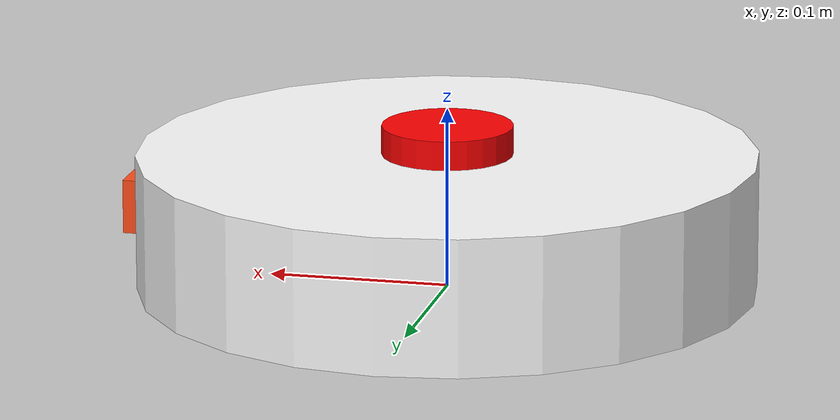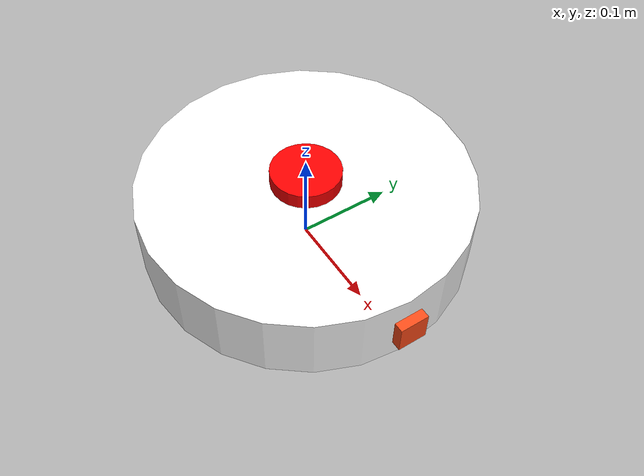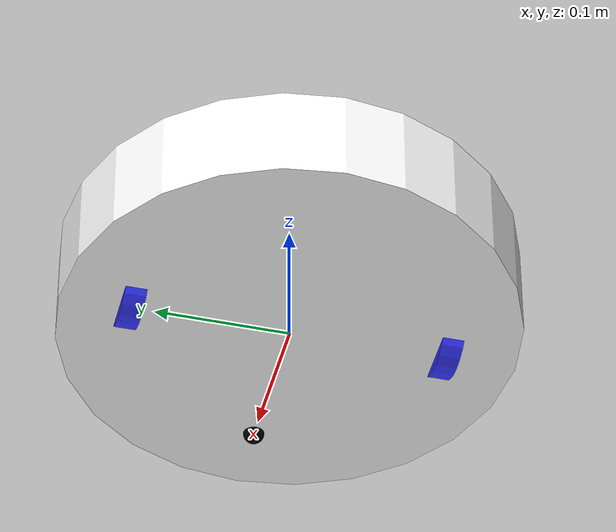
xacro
<?xml version="1.0"?>
<robot xmlns:xacro="http://www.ros.org/wiki/xacro" name="roomba">

    <xacro:arg name="use_ros2_control" default="true" />
    <xacro:arg name="sim_mode" default="false" />

    <xacro:include filename="robot_core.xacro" />

    <xacro:if value="$(arg use_ros2_control)">
        <xacro:include filename="ros2_control.xacro" />
    </xacro:if>

    <xacro:unless value="$(arg use_ros2_control)">
        <xacro:include filename="gazebo_control.xacro" />
    </xacro:unless>

    <xacro:include filename="lidar.xacro" />
    <!-- Esse aqui é o arquivo para a câmera -->
    <xacro:include filename="camera.xacro" />
</robot>

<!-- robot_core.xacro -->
<robot xmlns:xacro="http://www.ros.org/wiki/xacro">

  <xacro:include filename="inertial_macros.xacro" />
  <xacro:include filename="materials_macros.xacro" />

  <!-- BASE LINK-->
  <link name="base_link"></link>

  <!-- BASE FOOTPRINT LINK-->
  <joint name="base_footprint_joint" type="fixed">
    <parent link="base_link" />
    <child link="base_footprint" />
    <origin xyz="0.0 0.0 0.0" rpy="0.0 0.0 0.0" />
  </joint>

  <link name="base_footprint" />

  <!-- CHASSI LINK-->
  <joint name="chassis_joint" type="fixed">
    <parent link="base_link" />
    <child link="chassis" />
    <origin xyz="-0.17 0.0 0.0" />
  </joint>

  <link name="chassis">
    <visual>
      <origin xyz="0.17 0.0 0.0375" />
      <geometry>
        <cylinder radius="0.17" length="0.075" />
      </geometry>
      <xacro:material_white />
    </visual>

    <collision>
      <origin xyz="0.17 0.0 0.0375" />
      <geometry>
        <cylinder radius="0.17" length="0.075" />
      </geometry>
    </collision>

    <xacro:inertial_cylinder mass="0.7" radius="0.17" length="0.075">
      <origin xyz="0.17 0.0 0.0375" rpy="0.0 0.0 0.0" />
    </xacro:inertial_cylinder>
  </link>

  <xacro:gazebo_material_white reference="chassis" />

  <!-- LEFT WHEEL LINK-->
  <joint name="left_wheel_joint" type="continuous">
    <parent link="base_link" />
    <child link="left_wheel" />
    <origin xyz="0.0 0.1175 0.028" rpy="-${pi/2} 0.0 0.0" />
    <axis xyz="0.0 0.0 1" />
  </joint>

  <link name="left_wheel">
    <visual>
      <geometry>
        <cylinder radius="0.036" length="0.016" />
      </geometry>
      <xacro:material_blue />
    </visual>

    <collision>
      <geometry>
        <sphere radius="0.036" />
      </geometry>
    </collision>

    <xacro:inertial_cylinder mass="0.6" radius="0.036" length="0.016">
      <origin xyz="0.0 0.0 0.0" rpy="0.0 0.0 0.0" />
    </xacro:inertial_cylinder>
  </link>

  <xacro:gazebo_material_blue reference="left_wheel" />

  <!--RIGHT
  WHEEL LINK -->
  <joint name="right_wheel_joint" type="continuous">
    <parent link="base_link" />
    <child link="right_wheel" />
    <origin xyz="0.0 -0.1175 0.028" rpy="${pi/2} 0.0 0.0" />
    <axis xyz="0.0 0.0 -1" />
  </joint>

  <link name="right_wheel">
    <visual>
      <geometry>
        <cylinder radius="0.036" length="0.016" />
      </geometry>
      <xacro:material_blue />

    </visual>
    <collision>
      <geometry>
        <sphere radius="0.036" />
      </geometry>
    </collision>

    <xacro:inertial_cylinder mass="0.6" radius="0.036" length="0.016">
      <origin xyz="0.0 0.0 0.0" rpy="0.0 0.0 0.0" />
    </xacro:inertial_cylinder>
  </link>

  <xacro:gazebo_material_blue reference="right_wheel" />

  <!-- CASTER WHEEL LINK-->
  <joint name="caster_wheel_link" type="fixed">
    <parent link="chassis" />
    <child link="caster_wheel" />
    <origin xyz="0.284 0.0 0.0" />
  </joint>

  <link name="caster_wheel">
    <visual>
      <geometry>
        <sphere radius="0.008" />
      </geometry>
      <xacro:material_black />
    </visual>

    <collision>
      <geometry>
        <sphere radius="0.008" />
      </geometry>
    </collision>

    <xacro:inertial_sphere mass="1.6" radius="0.008">
      <origin xyz="0.0 0.0 0.0" rpy="0.0 0.0 0.0" />
    </xacro:inertial_sphere>
  </link>

  <xacro:gazebo_material_black reference="caster_wheel" />

  <gazebo reference="caster_wheel">
    <mu1 value="0.001" />
    <mu2 value="0.001" />
  </gazebo>

</robot>

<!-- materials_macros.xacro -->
<robot xmlns:xacro="http://www.ros.org/wiki/xacro">
  <xacro:macro name="material_white">
    <material name="white">
      <color rgba="1 1 1 1" />
    </material>
  </xacro:macro>

  <xacro:macro name="material_orange">
    <material name="orange">
      <color rgba="1 0.3 0.1 1" />
    </material>
  </xacro:macro>

  <xacro:macro name="material_blue">
    <material name="blue">
      <color rgba="0.2 0.2 1 1" />
    </material>
  </xacro:macro>

  <xacro:macro name="material_black">
    <material name="black">
      <color rgba="0 0 0 1" />
    </material>
  </xacro:macro>

  <xacro:macro name="material_red">
    <material name="red">
      <color rgba="1 0 0 1" />
    </material>
  </xacro:macro>

  <xacro:macro name="gazebo_material_white" params="reference">
    <gazebo reference="${reference}">
      <material>Gazebo/White</material>
    </gazebo>
  </xacro:macro>

  <xacro:macro name="gazebo_material_blue" params="reference">
    <gazebo reference="${reference}">
      <material>Gazebo/Blue</material>
    </gazebo>

  </xacro:macro>

  <xacro:macro name="gazebo_material_black" params="reference">
    <gazebo reference="${reference}">
      <material>Gazebo/Black</material>
    </gazebo>
  </xacro:macro>

  <xacro:macro name="gazebo_material_red" params="reference">
    <gazebo reference="${reference}">
      <material>Gazebo/Red</material>
    </gazebo>
  </xacro:macro>
</robot>

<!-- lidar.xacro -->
<robot xmlns:xacro="http://www.ros.org/wiki/xacro">

    <xacro:include filename="materials_macros.xacro" />

    <joint name="laser_joint" type="fixed">
        <parent link="chassis" />
        <child link="laser_frame" />
        <origin xyz="0.17 0.0 0.083" rpy="0.0 0.0 0.0" />
    </joint>

    <link name="laser_frame">
        <visual>
            <geometry>
                <cylinder radius="0.036" length="0.016" />
            </geometry>
            <xacro:material_red />
        </visual>

        <collision>
            <geometry>
                <sphere radius="0.036" />
            </geometry>
        </collision>

        <xacro:inertial_cylinder mass="0.6" radius="0.036" length="0.016">
            <origin xyz="0.0 0.0 0.0" rpy="0.0 0.0 0.0" />
        </xacro:inertial_cylinder>
    </link>

    <xacro:gazebo_material_red reference="laser_frame" />

    <gazebo reference="laser_frame">
        <sensor name="laser" type="ray">
            <pose> 0 0 0 0 0 0 </pose>
            <visualize>true</visualize>
            <update_rate>10</update_rate>
            <ray>
                <scan>
                    <horizontal>
                        <samples>360</samples>
                        <min_angle>-3.14</min_angle>
                        <max_angle>3.14</max_angle>
                    </horizontal>
                </scan>
                <range>
                    <min>0.3</min>
                    <max>12</max>
                </range>
            </ray>
            <plugin name="laser_controller" filename="libgazebo_ros_ray_sensor.so">
                <ros>
                    <argument>--ros-args</argument>
                    <argument>-r</argument>
                    <argument>~/out:=scan</argument>
                </ros>
                <output_type>sensor_msgs/LaserScan</output_type>
                <frame_name>laser_frame</frame_name>
            </plugin>
        </sensor>
    </gazebo>

</robot>

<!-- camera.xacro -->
<robot xmlns:xacro="http://www.ros.org/wiki/xacro">

    <xacro:include filename="materials_macros.xacro" />

    <!-- Aqui é criada a junta da câmera -->
    <joint name="camera_joint" type="fixed">
        <parent link="chassis" />
        <child link="camera_link" />
        <origin xyz="0.345 0.0 0.0375" rpy="0.0 0.0 0.0" />
    </joint>

    <!-- Aqui é criado o link da câmera no simulado -->
    <link name="camera_link">
        <visual>
            <geometry>
                <box size="0.010 0.03 0.03"/>
            </geometry>
            <xacro:material_orange />
        </visual>
    </link>

    <!-- Aqui é criada a junta da visão óptica da câmera -->
    <joint name="camera_optical_joint" type="fixed">
        <parent link="camera_link"/>
        <child link="camera_link_optical"/>
        <origin xyz="0 0 0" rpy="${-pi/2} 0 ${-pi/2}" />
    </joint>

    <!-- Aqui é criado o link para a visão óptica da câmera-->
    <link name="camera_link_optical">

    </link>

    <xacro:gazebo_material_orange reference="camera_link" />

    <gazebo reference="camera_link">
        <!-- A câmera é um sensor para o Gazebo e para o ROS-->
        <sensor name="camera" type="camera">
            <pose> 0 0 0 0 0 0 </pose>
            <visualize>true</visualize>
            <update_rate>10</update_rate>
            <!-- Aqui começa a criação da câmera -->
            <camera>
                <!-- Aqui é o campo de visão horizontal em radianos -->
                <!-- Isso daqui mostra o quanto ampliada ou reduzida a imagem será-->
                <horizontal_fov>1.089</horizontal_fov>
                <image>
                    <!-- Isso aqui significa 8 bits para as cores vermelho, verde e azul-->
                    <format>R8G8B8</format>
                    <!-- O tamanho e a altura da imagem-->
                    <width>640</width>
                    <height>480</height>
                </image>
                <clip>
                    <!-- Aqui cria o limite de visão que a câmera pode ver -->
                    <near>0.05</near> <!-- A menor distância para detecção é 50 mm-->
                    <far>8.0</far>  <!-- A maior distância para detecção é 8 m-->
                </clip>
            </camera>
            <plugin name="camera_controller" filename="libgazebo_ros_camera.so">
                <frame_name>camera_link_optical</frame_name>
            </plugin>
        </sensor>
    </gazebo>

</robot>
